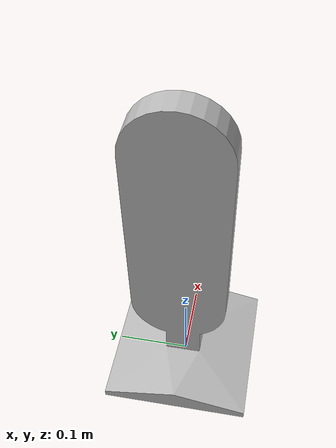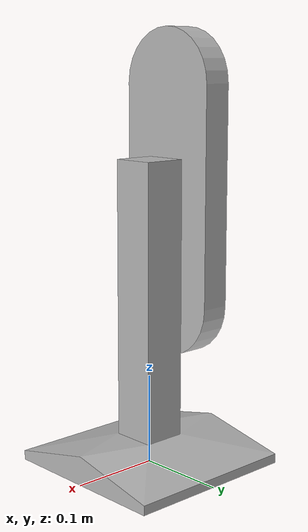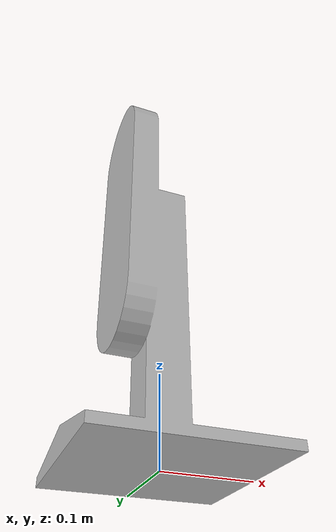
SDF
<?xml version="1.0" ?>
<sdf version="1.8">
  <model name="SignTrafficLight">
    <static>true</static>
    <link name="SignTrafficLight">
      <visual name="visual">
        <geometry>
          <mesh>
            <uri>model://YahboomTrack/SignTrafficLight/meshes/SignTrafficLight.dae</uri>
            <scale>2.0 2.0 2.0</scale>
          </mesh>
        </geometry>
      </visual>
      <collision name="visual">
        <geometry>
          <mesh>
            <uri>model://YahboomTrack/SignTrafficLight/meshes/SignTrafficLight.dae</uri>
            <scale>2.0 2.0 2.0</scale>
          </mesh>
        </geometry>
      </collision>
    </link>
  </model>
</sdf>
